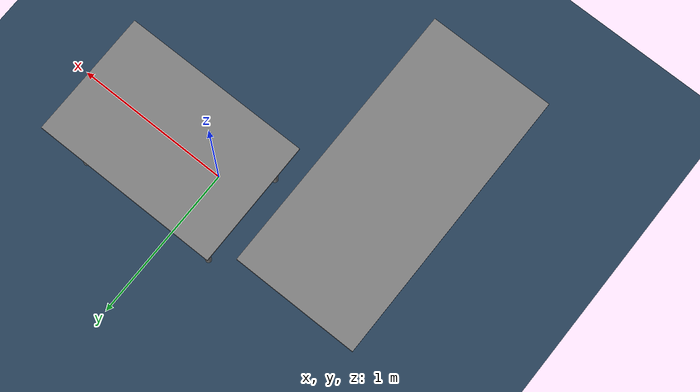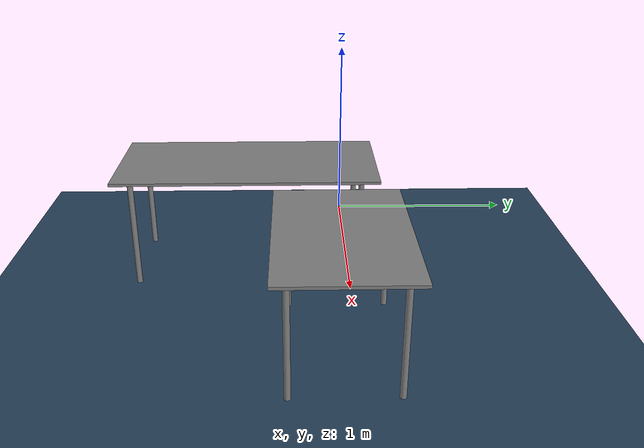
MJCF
<mujoco model="tableworld">
    <!-- ⚙️ MuJoCo basic settings -->
    <compiler eulerseq="XYZ"/> <!-- Specifies the Euler angle sequence for rotations -->
    <statistic center="0.3 0 0.4" extent="0.8"/> <!-- 📊 Defines the center and extent of the simulation statistics -->

    <!-- 💡 Lighting and camera settings -->
    <visual>
        <headlight diffuse="0.6 0.6 0.6" ambient="0.1 0.1 0.1"/> <!-- 💡 Configures the headlight with diffuse and ambient lighting -->
        <rgba haze="0.15 0.25 0.35 1"/> <!-- 🌫️ Adds a haze effect to the environment -->
        <global azimuth="120" elevation="-20" offwidth="1280" offheight="720"/> <!-- 🌍 Sets global lighting and rendering parameters -->
    </visual>

    <!-- 🖼️ Assets: textures, materials, meshes -->
    <asset>

        <!-- 🌌 Environment textures -->
        <texture type="skybox" builtin="gradient" rgb1="0.3 0.5 0.7" rgb2="0 0 0" width="512" height="3072"/> <!-- 🌈 Skybox gradient for the environment -->
        <texture type="2d" name="groundplane" builtin="checker" mark="edge" rgb1="0.2 0.3 0.4" rgb2="0.1 0.2 0.3" markrgb="0.8 0.8 0.8" width="300" height="300"/> <!-- 🟦 Checkerboard texture for the ground -->
        <material name="groundplane" texture="groundplane" texuniform="true" texrepeat="5 5" reflectance="0.2"/> <!-- 🪞 Material for the groundplane -->

        <!-- 🪵 Table and block materials -->
        <texture name="wood" file="wood.png" type="2d"/> <!-- 🖌️ Texture for wooden objects -->
        <material name="wood_material" texture="wood" texrepeat="50 50" texuniform="true" rgba="0.8 0.8 0.8 1"/> <!-- 🪵 Material for wooden objects -->
    </asset>

    <worldbody>

        <!-- 💡 Global light source -->
        <light pos="0 0 1.5" dir="0 0 -1" directional="true"/> <!-- 💡 Directional light source -->

        <!-- 🟦 Ground plane -->
        <geom name="floor" pos="0.0 0.0 -0.8" size="0 0 0.05" type="plane" material="groundplane"/> <!-- 🟦 Ground plane with checkerboard material -->

        <!-- 🪑 Table 1 -->
        <body name="table1" pos="0.365 0 -0.005">
            <geom name="table1_top" type="box" size="0.625 0.42 0.01" pos="0 0 0"/> <!-- 🪑 Tabletop geometry -->
            <geom name="table1_leg_1" type="cylinder" size=".02 .4" pos=".5 -.33 -.4" euler="0 0 0"/> <!-- 🦵 Table leg 1 -->
            <geom name="table1_leg_2" type="cylinder" size=".02 .4" pos=".5 .33 -.4" euler="0 0 0"/> <!-- 🦵 Table leg 2 -->
            <geom name="table1_leg_3" type="cylinder" size=".02 .4" pos="-.5 -.33 -.4" euler="0 0 0"/> <!-- 🦵 Table leg 3 -->
            <geom name="table1_leg_4" type="cylinder" size=".02 .4" pos="-.5 .33 -.4" euler="0 0 0"/> <!-- 🦵 Table leg 4 -->
        </body>

        <!-- 🪑 Table 2 -->
        <body name="table2" pos="-0.805 -0.615 -0.005">
            <geom name="table2_top" type="box" size="0.42 0.925 0.01" pos="0 0 0"/> <!-- 🪑 Tabletop geometry -->
            <geom name="table2_leg_1" type="cylinder" size=".02 .4" pos=".33 -.8 -.4" euler="0 0 0"/> <!-- 🦵 Table leg 1 -->
            <geom name="table2_leg_2" type="cylinder" size=".02 .4" pos=".33 .8 -.4" euler="0 0 0"/> <!-- 🦵 Table leg 2 -->
            <geom name="table2_leg_3" type="cylinder" size=".02 .4" pos="-.33 -.8 -.4" euler="0 0 0"/> <!-- 🦵 Table leg 3 -->
            <geom name="table2_leg_4" type="cylinder" size=".02 .4" pos="-.33 .8 -.4" euler="0 0 0"/> <!-- 🦵 Table leg 4 -->
        </body>

        <!-- 🎥 Cameras -->
        <camera name="top-right" pos="1.3 -1.5 1.1" euler="1 0 1.1"/> <!-- 🎥 Camera positioned at the top-right -->
        <camera name="robot-cam" pos="1.3 -1.5 1.1" euler="1 0 1.1" fovy="60"/> <!-- 🤖 Robot camera with a field of view -->
    </worldbody>
</mujoco>
